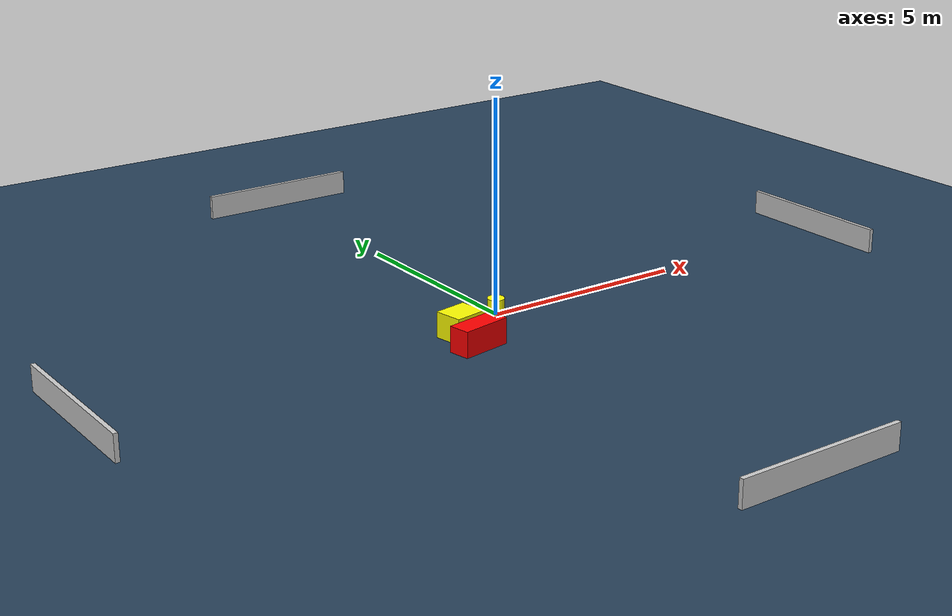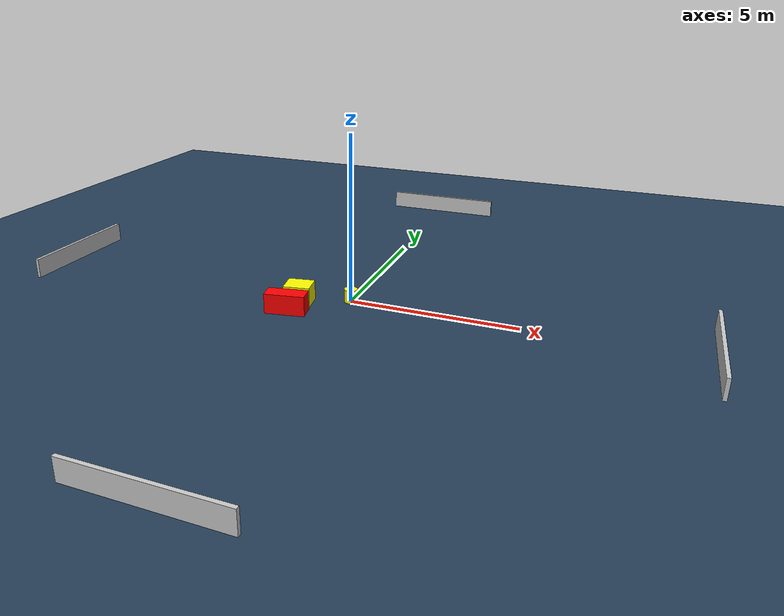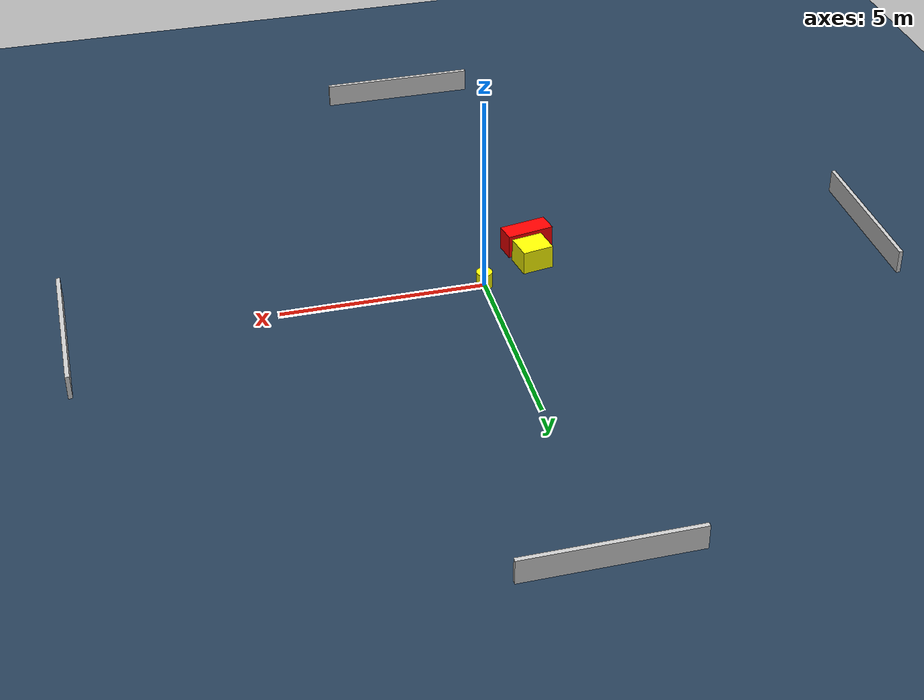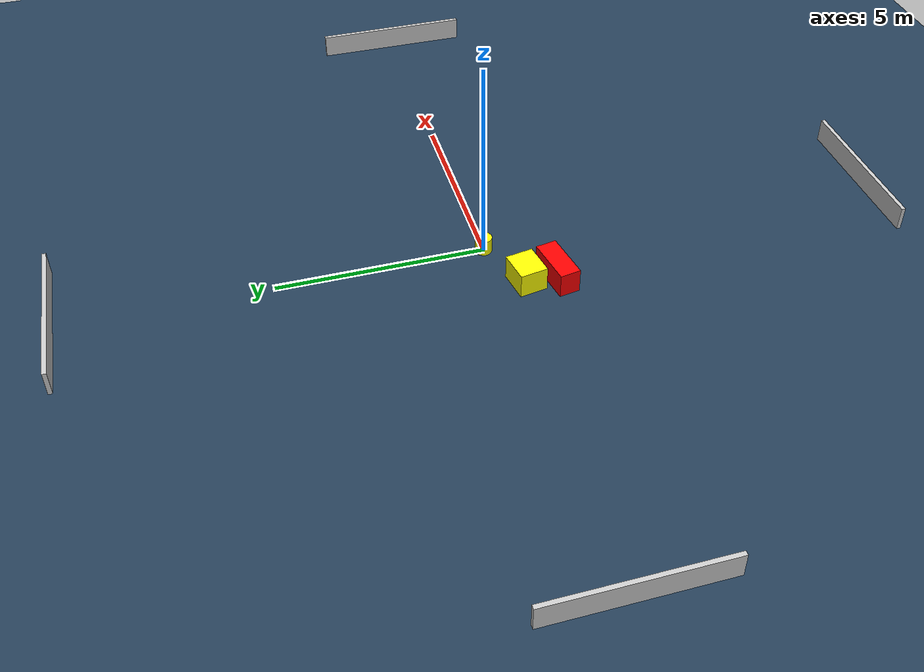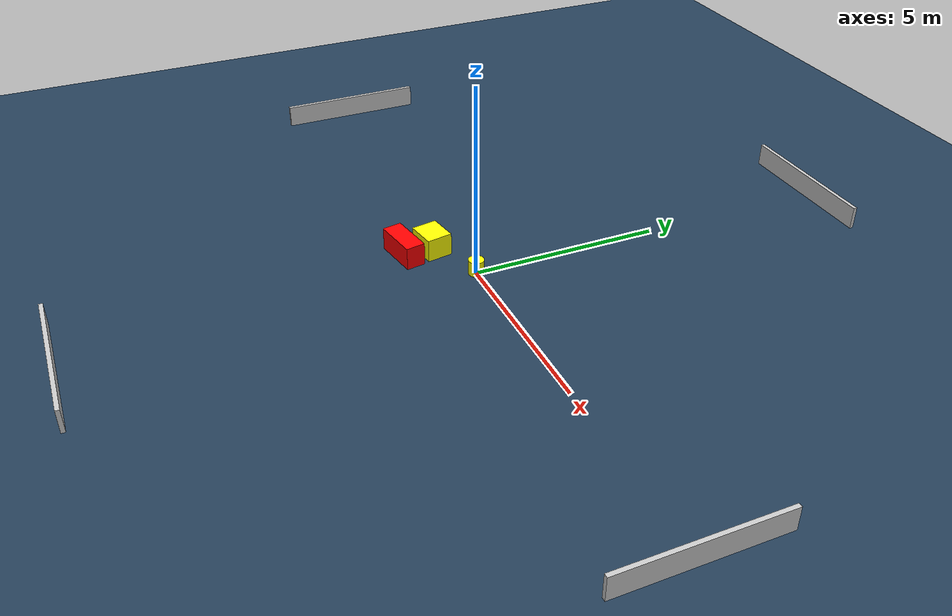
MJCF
<?xml version="1.0" ?>
<mujoco model="generated_environment">
  <option timestep="0.01" integrator="RK4" cone="elliptic"/>
  <default>
    <geom density="1"/>
  </default>
  <asset>
    <texture builtin="gradient" height="3072" name="skybox" rgb1="0.3 0.5 0.7" rgb2="0 0 0" type="skybox" width="512"/>
    <texture builtin="checker" height="300" name="groundplane" rgb1="0.2 0.3 0.4" rgb2="0.1 0.2 0.3" type="2d" width="300"/>
    <material name="groundplane" reflectance="0.2" texrepeat="5 5" texture="groundplane"/>
  </asset>
  <worldbody>
    <light dir="0 0 -1" directional="true" pos="0 0 1.5"/>
    <geom condim="3" friction="0.5 0.005 0.001" material="groundplane" name="floor" pos="0 0 0" size="0 0 0.05" type="plane"/>
    <body name="walls">
      <geom name="wall_1" condim="4" pos="-10.0 0.0 0.3" rgba="0.800000011920929 0.800000011920929 0.800000011920929 1.0" size="0.05 2.0 0.3" type="box"/>
      <geom name="wall_2" condim="4" pos="10.0 0.0 0.3" rgba="0.800000011920929 0.800000011920929 0.800000011920929 1.0" size="0.05 2.0 0.3" type="box"/>
      <geom name="wall_3" condim="4" pos="0.0 -10.0 0.3" rgba="0.800000011920929 0.800000011920929 0.800000011920929 1.0" size="2.0 0.05 0.3" type="box"/>
      <geom name="wall_4" condim="4" pos="0.0 10.0 0.3" rgba="0.800000011920929 0.800000011920929 0.800000011920929 1.0" size="2.0 0.05 0.3" type="box"/>
    </body>
    <body name="robot">
      <joint name="joint_x" type="slide" pos="0 0 0" axis="1 0 0"/>
      <joint name="joint_y" type="slide" pos="0 0 0" axis="0 1 0"/>
      <geom name="robot" type="cylinder" pos="0.0 0.0 0.2" size="0.2 0.2 0.0" mass="5.0" friction="1.0 0.005 0.0001" condim="4" rgba="1.0 1.0 0.0 1.0"/>
    </body>
    <body name="obstacle_1_movable">
      <geom name="obstacle_1_movable" condim="4" pos="-1.3898649207554148 -0.6284305562204973 0.3" euler="0 0 9.878234518638793" friction="0.0 0.005 0.001" rgba="1.0 1.0 0.0 1.0" size="0.3936011459260782 0.33807094907404334 0.3" type="box" mass="0.1"/>
      <joint type="free"/>
    </body>
    <body name="obstacle_2_static">
      <geom name="obstacle_2_static" condim="4" pos="-1.442559263745644 -1.370835501067108 0.3" euler="0 0 100.05060315606251" friction="0.0 0.005 0.001" rgba="1.0 0.0 0.0 1.0" size="0.25304663150446055 0.5960211372783115 0.3" type="box"/>
    </body>
  </worldbody>
  <actuator>
    <motor name="actuator_x" joint="joint_x" gear="1" ctrlrange="-1 1"/>
    <motor name="actuator_y" joint="joint_y" gear="1" ctrlrange="-1 1"/>
  </actuator>
</mujoco>
